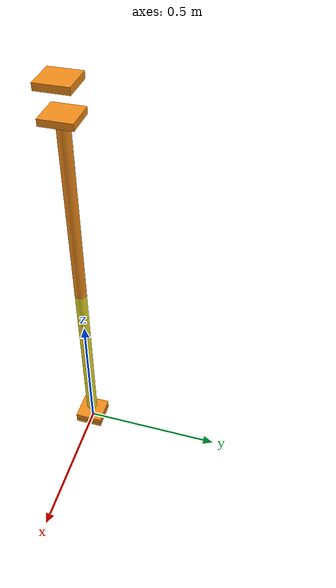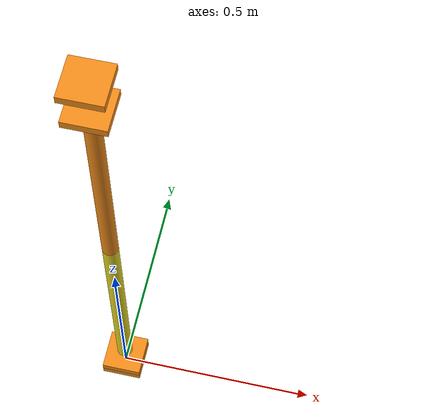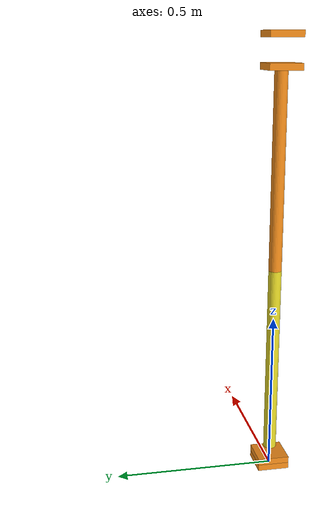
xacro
<?xml version="1.0"?>
<robot xmlns:xacro="http://www.ros.org/wiki/xacro">

    <xacro:property name="arm_base_length" value="0.1" />
    <xacro:property name="arm_base_width" value="0.1" />
    <xacro:property name="arm_base_height" value="0.02" />
    <xacro:property name="forearm_radius" value="0.02" />
    <xacro:property name="forearm_length" value="0.6" />
    <xacro:property name="hand_radius" value="0.02" />
    <xacro:property name="hand_length" value="0.6" />

    <link name="arm_base_link">
        <visual>
            <geometry>
                <box size="${arm_base_length} ${arm_base_width} ${arm_base_height}" />
            </geometry>
            <origin xyz="0 0 ${arm_base_height / 2.0}" rpy="0 0 0" />
            <material name="orange" />
        </visual>
        <collision>
            <geometry>
                <box size="${arm_base_length} ${arm_base_width} ${arm_base_height}" />
            </geometry>
            <origin xyz="0 0 ${arm_base_height / 2.0}" rpy="0 0 0" />
        </collision>
        <xacro:box_inertia m="0.3" l="${2*arm_base_length}" w="${2*arm_base_width}" h="${2*arm_base_height}"
                           xyz="0 0 ${arm_base_height / 2.0}" rpy="0 0 0" />
    </link>

    <link name="arm_base_link2">
        <visual>
            <geometry>
                <box size="${arm_base_length} ${arm_base_width} ${arm_base_height}" />
            </geometry>
            <origin xyz="0 0 ${arm_base_height / 2.0}" rpy="0 0 0" />
            <material name="orange" />
        </visual>
        <collision>
            <geometry>
                <box size="${arm_base_length} ${arm_base_width} ${arm_base_height}" />
            </geometry>
            <origin xyz="0 0 ${arm_base_height / 2.0}" rpy="0 0 0" />
        </collision>
        <xacro:box_inertia m="0.03" l="${2*arm_base_length}" w="${2*arm_base_width}" h="${2*arm_base_height}"
                           xyz="0 0 ${arm_base_height / 2.0}" rpy="0 0 0" />
    </link>

 <link name="arm_base_link3">
        <visual>
            <geometry>
                <box size="${arm_base_length} ${arm_base_width} ${arm_base_height}" />
            </geometry>
            <origin xyz="0 0 ${arm_base_height / 2.0}" rpy="0 0 0" />
            <material name="orange" />
        </visual>
        <collision>
            <geometry>
                <box size="${arm_base_length} ${arm_base_width} ${arm_base_height}" />
            </geometry>
            <origin xyz="0 0 ${arm_base_height / 2.0}" rpy="0 0 0" />
        </collision>
        <xacro:box_inertia m="0.01" l="${2*arm_base_length}" w="${2*arm_base_width}" h="${2*arm_base_height}"
                           xyz="0 0 ${arm_base_height / 2.0}" rpy="0 0 0" />
    </link>

    <link name="arm_base_link4">
        <visual>
            <geometry>
                <box size="${arm_base_length} ${arm_base_width} ${arm_base_height}" />
            </geometry>
            <origin xyz="0 0 ${arm_base_height / 2.0}" rpy="0 0 0" />
            <material name="orange" />
        </visual>
        <collision>
            <geometry>
                <box size="${arm_base_length} ${arm_base_width} ${arm_base_height}" />
            </geometry>
            <origin xyz="0 0 ${arm_base_height / 2.0}" rpy="0 0 0" />
        </collision>
        <xacro:box_inertia m="0.01" l="${2*arm_base_length}" w="${2*arm_base_width}" h="${2*arm_base_height}"
                           xyz="0 0 ${arm_base_height / 2.0}" rpy="0 0 0" />
    </link>

    <link name="forearm_link">
        <visual>
            <geometry>
                <cylinder radius="${forearm_radius}" length="${forearm_length}" />
            </geometry>
            <origin xyz="0 0 ${forearm_length / 2.0}" rpy="0 0 0" />
            <material name="yellow" />
        </visual>
        <collision>
            <geometry>
                <cylinder radius="${forearm_radius}" length="${forearm_length}" />
            </geometry>
            <origin xyz="0 0 ${forearm_length / 2.0}" rpy="0 0 0" />
        </collision>
        <xacro:cylinder_inertia m="0.03" r="${2*forearm_radius}" h="${2*forearm_length}"
                                xyz="0 0 ${forearm_length / 2.0}" rpy="0 0 0" />
    </link>

    <link name="hand_link">
        <visual>
            <geometry>
                <cylinder radius="${hand_radius}" length="${hand_length}" />
            </geometry>
            <origin xyz="0 0 ${hand_length / 2.0}" rpy="0 0 0" />
            <material name="orange" />
        </visual>
        <collision>
             <geometry>
                <cylinder radius="${hand_radius}" length="${hand_length}" />
            </geometry>
            <origin xyz="0 0 ${hand_length / 2.0}" rpy="0 0 0" />
        </collision>
        <xacro:cylinder_inertia m="0.03" r="${2*hand_radius}" h="${2*hand_length}"
                                xyz="0 0 ${hand_length / 2.0}" rpy="0 0 0" />
    </link>

    <joint name="arm_base_2_joint" type="revolute">
        <parent link="arm_base_link2" />
        <child link="arm_base_link" />
        <origin xyz="0 0 ${arm_base_height}" rpy="0 0 0" />
        <axis xyz="0 0 1" />
        <limit lower="0" upper="${pi*2}" effort="200" velocity="100" />
        <dynamics friction="3.05" damping="1.0" />
    </joint>

    <joint name="arm_base_forearm_joint" type="revolute">
        <parent link="arm_base_link" />
        <child link="forearm_link" />
        <origin xyz="0 0 ${arm_base_height*2}" rpy="0 0 0" />
        <axis xyz="0 1 0" />
        <limit lower="${-pi*2}" upper="${pi*2}" effort="200" velocity="100" />
        <dynamics friction="3.05" damping="1.0" />
    </joint>

    <joint name="forearm_hand_joint" type="revolute">
        <parent link="forearm_link" />
        <child link="hand_link" />
        <origin xyz="0 0 ${forearm_length}" rpy="0 0 0" />
        <axis xyz="0 1 0" />
        <limit lower="${-pi*2}" upper="${pi*2}" effort="200" velocity="100" />
        <dynamics friction="3.05" damping="1.0" />
    </joint>

    <joint name="hand_2_joint" type="revolute">
        <parent link="hand_link" />
        <child link="arm_base_link3" />
        <origin xyz="0 0 ${hand_length}" rpy="0 0 0" />
        <axis xyz="0 0 1" />
        <limit lower="0" upper="${pi*2}" effort="200" velocity="100" />
        <dynamics friction="3.05" damping="1.0" />
    </joint>

    <joint name="hand_3_joint" type="revolute">
        <parent link="arm_base_link3" />
        <child link="arm_base_link4" />
        <origin xyz="0 0 0.09" rpy="0 0 0" />
        <axis xyz="1 0 0" />
        <limit lower="0" upper="${pi*2}" effort="200" velocity="100" />
        <dynamics friction="3.05" damping="1.0" />
    </joint>

</robot>
